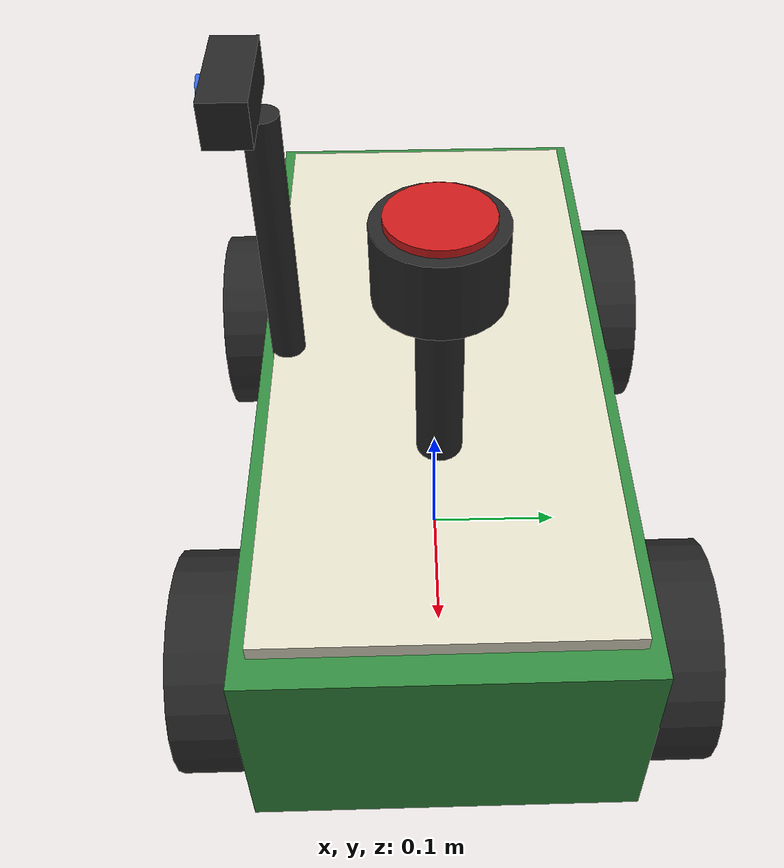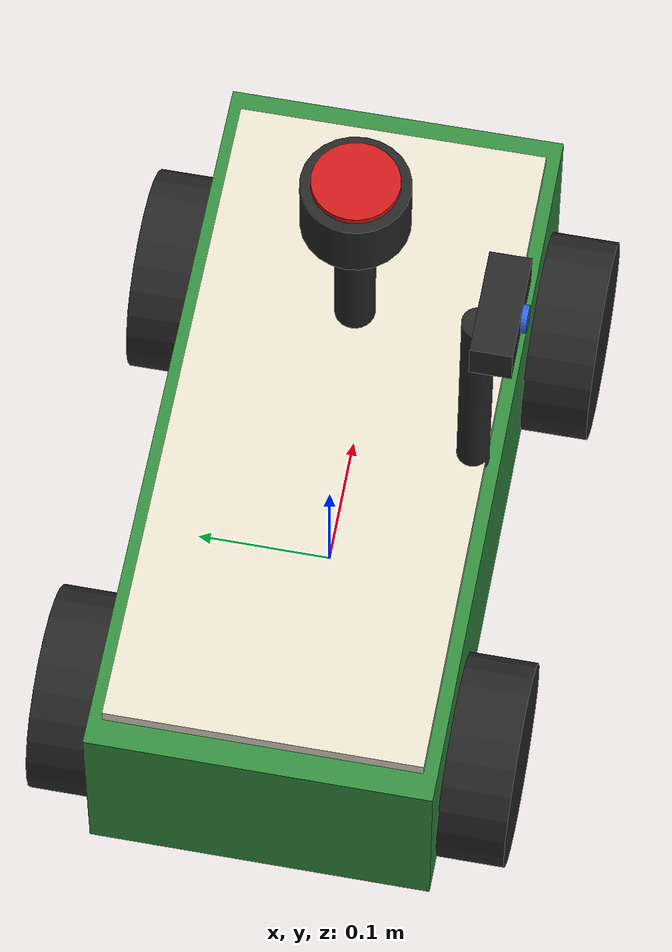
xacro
<?xml version="1.0"?>
<!--
  Greenhouse row follower robot: 4-wheel skid-steer base.
  Dimensions: see docs/scenario.md. Frames follow REP-103 (x forward, y left, z up).
-->
<robot name="greenhouse_bot" xmlns:xacro="http://www.ros.org/wiki/xacro">

  <xacro:include filename="$(find midterm_description)/urdf/inertial_macros.xacro"/>

  <!-- Chassis -->
  <xacro:property name="chassis_length" value="0.55"/>
  <xacro:property name="chassis_width" value="0.25"/>
  <xacro:property name="chassis_height" value="0.15"/>
  <xacro:property name="chassis_z" value="0.04"/>
  <xacro:property name="chassis_mass" value="8.0"/>

  <!-- Wheels -->
  <xacro:property name="wheel_radius" value="0.075"/>
  <xacro:property name="wheel_width" value="0.05"/>
  <xacro:property name="wheel_mass" value="0.5"/>
  <xacro:property name="wheel_x" value="0.18"/>
  <xacro:property name="wheel_y" value="0.15"/>
  <xacro:property name="wheel_mu_lateral" value="0.3"/>
  <xacro:property name="wheel_separation_effective" value="0.35"/>

  <material name="leaf_green"><color rgba="0.20 0.55 0.25 1.0"/></material>
  <material name="dark_grey"><color rgba="0.15 0.15 0.15 1.0"/></material>
  <material name="cream"><color rgba="0.90 0.88 0.80 1.0"/></material>

  <!-- Base frames -->
  <link name="base_footprint"/>

  <link name="base_link"/>

  <joint name="base_footprint_joint" type="fixed">
    <parent link="base_footprint"/>
    <child link="base_link"/>
    <origin xyz="0 0 ${wheel_radius}" rpy="0 0 0"/>
  </joint>

  <!-- Chassis -->
  <link name="chassis">
    <visual>
      <geometry><box size="${chassis_length} ${chassis_width} ${chassis_height}"/></geometry>
      <material name="leaf_green"/>
    </visual>
    <!-- Cream top plate -->
    <visual>
      <origin xyz="0 0 ${chassis_height/2 + 0.005}" rpy="0 0 0"/>
      <geometry><box size="${chassis_length - 0.04} ${chassis_width - 0.02} 0.01"/></geometry>
      <material name="cream"/>
    </visual>
    <collision>
      <geometry><box size="${chassis_length} ${chassis_width} ${chassis_height}"/></geometry>
    </collision>
    <xacro:box_inertia m="${chassis_mass}" x="${chassis_length}" y="${chassis_width}" z="${chassis_height}">
      <origin xyz="0 0 0" rpy="0 0 0"/>
    </xacro:box_inertia>
  </link>

  <joint name="chassis_joint" type="fixed">
    <parent link="base_link"/>
    <child link="chassis"/>
    <origin xyz="0 0 ${chassis_z}" rpy="0 0 0"/>
  </joint>

  <!-- Wheel macro: prefix e.g. front_left, x/y signs place it on the chassis -->
  <xacro:macro name="wheel" params="prefix x_sign y_sign">
    <link name="${prefix}_wheel">
      <visual>
        <origin xyz="0 0 0" rpy="${pi/2} 0 0"/>
        <geometry><cylinder radius="${wheel_radius}" length="${wheel_width}"/></geometry>
        <material name="dark_grey"/>
      </visual>
      <collision>
        <origin xyz="0 0 0" rpy="${pi/2} 0 0"/>
        <geometry><cylinder radius="${wheel_radius}" length="${wheel_width}"/></geometry>
      </collision>
      <xacro:cylinder_inertia m="${wheel_mass}" r="${wheel_radius}" h="${wheel_width}">
        <origin xyz="0 0 0" rpy="${pi/2} 0 0"/>
      </xacro:cylinder_inertia>
    </link>

    <joint name="${prefix}_wheel_joint" type="continuous">
      <parent link="base_link"/>
      <child link="${prefix}_wheel"/>
      <origin xyz="${x_sign * wheel_x} ${y_sign * wheel_y} 0" rpy="0 0 0"/>
      <axis xyz="0 1 0"/>
    </joint>

    <gazebo reference="${prefix}_wheel">
      <mu1>${wheel_mu_lateral}</mu1>
      <mu2>1.0</mu2>
      <fdir1>0 0 1</fdir1>
    </gazebo>
  </xacro:macro>

  <xacro:wheel prefix="front_left" x_sign="1" y_sign="1"/>
  <xacro:wheel prefix="front_right" x_sign="1" y_sign="-1"/>
  <xacro:wheel prefix="rear_left" x_sign="-1" y_sign="1"/>
  <xacro:wheel prefix="rear_right" x_sign="-1" y_sign="-1"/>

  <!-- Sensors -->
  <xacro:include filename="$(find midterm_description)/urdf/lidar.xacro"/>
  <xacro:include filename="$(find midterm_description)/urdf/imu.xacro"/>
  <xacro:include filename="$(find midterm_description)/urdf/camera.xacro"/>

  <xacro:include filename="$(find midterm_description)/urdf/gazebo.xacro"/>

</robot>

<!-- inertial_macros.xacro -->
<robot xmlns:xacro="http://www.ros.org/wiki/xacro">

  <!-- Solid box: x/y/z are full edge lengths -->
  <xacro:macro name="box_inertia" params="m x y z *origin">
    <inertial>
      <xacro:insert_block name="origin"/>
      <mass value="${m}"/>
      <inertia ixx="${m * (y*y + z*z) / 12.0}" ixy="0" ixz="0"
               iyy="${m * (x*x + z*z) / 12.0}" iyz="0"
               izz="${m * (x*x + y*y) / 12.0}"/>
    </inertial>
  </xacro:macro>

  <!-- Solid cylinder with its axis along local z -->
  <xacro:macro name="cylinder_inertia" params="m r h *origin">
    <inertial>
      <xacro:insert_block name="origin"/>
      <mass value="${m}"/>
      <inertia ixx="${m * (3*r*r + h*h) / 12.0}" ixy="0" ixz="0"
               iyy="${m * (3*r*r + h*h) / 12.0}" iyz="0"
               izz="${m * r * r / 2.0}"/>
    </inertial>
  </xacro:macro>

</robot>

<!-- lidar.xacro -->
<robot xmlns:xacro="http://www.ros.org/wiki/xacro">

  <xacro:property name="lidar_x" value="0.10"/>
  <xacro:property name="lidar_z" value="0.275"/>   <!-- from base_link (+0.075 → 0.35 m above ground) -->
  <xacro:property name="lidar_radius" value="0.04"/>
  <xacro:property name="lidar_height" value="0.05"/>
  <xacro:property name="lidar_mast_radius" value="0.015"/>
  <!-- Mast runs from the chassis top plate to the bottom of the sensor -->
  <xacro:property name="lidar_mast_bottom" value="${chassis_z + chassis_height/2}"/>
  <xacro:property name="lidar_mast_length" value="${lidar_z - lidar_height/2 - lidar_mast_bottom}"/>

  <link name="lidar_mast">
    <visual>
      <geometry><cylinder radius="${lidar_mast_radius}" length="${lidar_mast_length}"/></geometry>
      <material name="dark_grey"/>
    </visual>
    <xacro:cylinder_inertia m="0.05" r="${lidar_mast_radius}" h="${lidar_mast_length}">
      <origin xyz="0 0 0" rpy="0 0 0"/>
    </xacro:cylinder_inertia>
  </link>

  <joint name="lidar_mast_joint" type="fixed">
    <parent link="base_link"/>
    <child link="lidar_mast"/>
    <origin xyz="${lidar_x} 0 ${lidar_mast_bottom + lidar_mast_length/2}" rpy="0 0 0"/>
  </joint>

  <link name="lidar_link">
    <visual>
      <geometry><cylinder radius="${lidar_radius}" length="${lidar_height}"/></geometry>
      <material name="dark_grey"/>
    </visual>
    <!-- Red ring marks the sensor head -->
    <visual>
      <origin xyz="0 0 ${lidar_height/2}" rpy="0 0 0"/>
      <geometry><cylinder radius="${lidar_radius * 0.8}" length="0.01"/></geometry>
      <material name="lidar_red"><color rgba="0.8 0.1 0.1 1.0"/></material>
    </visual>
    <collision>
      <geometry><cylinder radius="${lidar_radius}" length="${lidar_height}"/></geometry>
    </collision>
    <xacro:cylinder_inertia m="0.2" r="${lidar_radius}" h="${lidar_height}">
      <origin xyz="0 0 0" rpy="0 0 0"/>
    </xacro:cylinder_inertia>
  </link>

  <joint name="lidar_joint" type="fixed">
    <parent link="base_link"/>
    <child link="lidar_link"/>
    <origin xyz="${lidar_x} 0 ${lidar_z}" rpy="0 0 0"/>
  </joint>

  <gazebo reference="lidar_link">
    <sensor name="lidar" type="gpu_lidar">
      <topic>scan</topic>
      <gz_frame_id>lidar_link</gz_frame_id>
      <update_rate>10</update_rate>
      <always_on>true</always_on>
      <visualize>true</visualize>
      <lidar>
        <scan>
          <horizontal>
            <samples>360</samples>
            <resolution>1</resolution>
            <min_angle>${-pi}</min_angle>
            <max_angle>${pi - 2*pi/360}</max_angle>
          </horizontal>
        </scan>
        <range>
          <!-- 0.20 m minimum ignores hits on the robot's own masts -->
          <min>0.20</min>
          <max>8.0</max>
          <resolution>0.01</resolution>
        </range>
        <noise>
          <type>gaussian</type>
          <mean>0.0</mean>
          <stddev>0.01</stddev>
        </noise>
      </lidar>
    </sensor>
  </gazebo>

</robot>

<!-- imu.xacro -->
<robot xmlns:xacro="http://www.ros.org/wiki/xacro">

  <link name="imu_link">
    <!-- Small board, visible through the top plate only in RViz (inside the chassis) -->
    <visual>
      <geometry><box size="0.04 0.03 0.005"/></geometry>
      <material name="imu_blue"><color rgba="0.1 0.3 0.8 1.0"/></material>
    </visual>
    <xacro:box_inertia m="0.01" x="0.04" y="0.03" z="0.005">
      <origin xyz="0 0 0" rpy="0 0 0"/>
    </xacro:box_inertia>
  </link>

  <joint name="imu_joint" type="fixed">
    <parent link="base_link"/>
    <child link="imu_link"/>
    <origin xyz="0 0 ${chassis_z}" rpy="0 0 0"/>
  </joint>

  <gazebo reference="imu_link">
    <sensor name="imu" type="imu">
      <topic>imu</topic>
      <gz_frame_id>imu_link</gz_frame_id>
      <update_rate>100</update_rate>
      <always_on>true</always_on>
      <visualize>false</visualize>
      <imu>
        <angular_velocity>
          <x><noise type="gaussian"><mean>0.0</mean><stddev>0.002</stddev></noise></x>
          <y><noise type="gaussian"><mean>0.0</mean><stddev>0.002</stddev></noise></y>
          <z><noise type="gaussian"><mean>0.0</mean><stddev>0.002</stddev></noise></z>
        </angular_velocity>
        <linear_acceleration>
          <x><noise type="gaussian"><mean>0.0</mean><stddev>0.02</stddev></noise></x>
          <y><noise type="gaussian"><mean>0.0</mean><stddev>0.02</stddev></noise></y>
          <z><noise type="gaussian"><mean>0.0</mean><stddev>0.02</stddev></noise></z>
        </linear_acceleration>
      </imu>
    </sensor>
  </gazebo>

</robot>

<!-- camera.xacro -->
<robot xmlns:xacro="http://www.ros.org/wiki/xacro">

  <xacro:property name="camera_mast_x" value="0.0"/>
  <xacro:property name="camera_mast_y" value="-0.105"/>   <!-- on the right edge of the top plate -->
  <xacro:property name="camera_z" value="0.325"/>          <!-- from base_link (+0.075 → 0.40 m above ground) -->
  <xacro:property name="camera_mast_radius" value="0.012"/>
  <xacro:property name="camera_mast_bottom" value="${chassis_z + chassis_height/2}"/>
  <xacro:property name="camera_mast_length" value="${camera_z - 0.015 - camera_mast_bottom}"/>

  <link name="camera_mast">
    <visual>
      <geometry><cylinder radius="${camera_mast_radius}" length="${camera_mast_length}"/></geometry>
      <material name="dark_grey"/>
    </visual>
    <xacro:cylinder_inertia m="0.03" r="${camera_mast_radius}" h="${camera_mast_length}">
      <origin xyz="0 0 0" rpy="0 0 0"/>
    </xacro:cylinder_inertia>
  </link>

  <joint name="camera_mast_joint" type="fixed">
    <parent link="base_link"/>
    <child link="camera_mast"/>
    <origin xyz="${camera_mast_x} ${camera_mast_y} ${camera_mast_bottom + camera_mast_length/2}" rpy="0 0 0"/>
  </joint>

  <!-- camera_link: x points where the camera looks (robot's right side) -->
  <link name="camera_link">
    <visual>
      <geometry><box size="0.03 0.08 0.03"/></geometry>
      <material name="dark_grey"/>
    </visual>
    <!-- Lens -->
    <visual>
      <origin xyz="0.017 0 0" rpy="0 ${pi/2} 0"/>
      <geometry><cylinder radius="0.01" length="0.005"/></geometry>
      <material name="lens_blue"><color rgba="0.2 0.4 0.9 1.0"/></material>
    </visual>
    <collision>
      <geometry><box size="0.03 0.08 0.03"/></geometry>
    </collision>
    <xacro:box_inertia m="0.1" x="0.03" y="0.08" z="0.03">
      <origin xyz="0 0 0" rpy="0 0 0"/>
    </xacro:box_inertia>
  </link>

  <joint name="camera_joint" type="fixed">
    <parent link="base_link"/>
    <child link="camera_link"/>
    <origin xyz="${camera_mast_x} ${camera_mast_y - 0.015} ${camera_z}" rpy="0 0 ${-pi/2}"/>
  </joint>

  <!-- Optical frame (REP-103): z forward, x right, y down. Images are stamped with this frame. -->
  <link name="camera_optical_link"/>

  <joint name="camera_optical_joint" type="fixed">
    <parent link="camera_link"/>
    <child link="camera_optical_link"/>
    <origin xyz="0 0 0" rpy="${-pi/2} 0 ${-pi/2}"/>
  </joint>

  <gazebo reference="camera_link">
    <sensor name="camera" type="camera">
      <topic>camera/image</topic>
      <gz_frame_id>camera_optical_link</gz_frame_id>
      <update_rate>15</update_rate>
      <always_on>true</always_on>
      <visualize>true</visualize>
      <camera>
        <camera_info_topic>camera/camera_info</camera_info_topic>
        <horizontal_fov>1.3</horizontal_fov>
        <image>
          <width>640</width>
          <height>480</height>
          <format>R8G8B8</format>
        </image>
        <clip>
          <near>0.05</near>
          <far>10.0</far>
        </clip>
        <noise>
          <type>gaussian</type>
          <mean>0.0</mean>
          <stddev>0.005</stddev>
        </noise>
      </camera>
    </sensor>
  </gazebo>

</robot>
